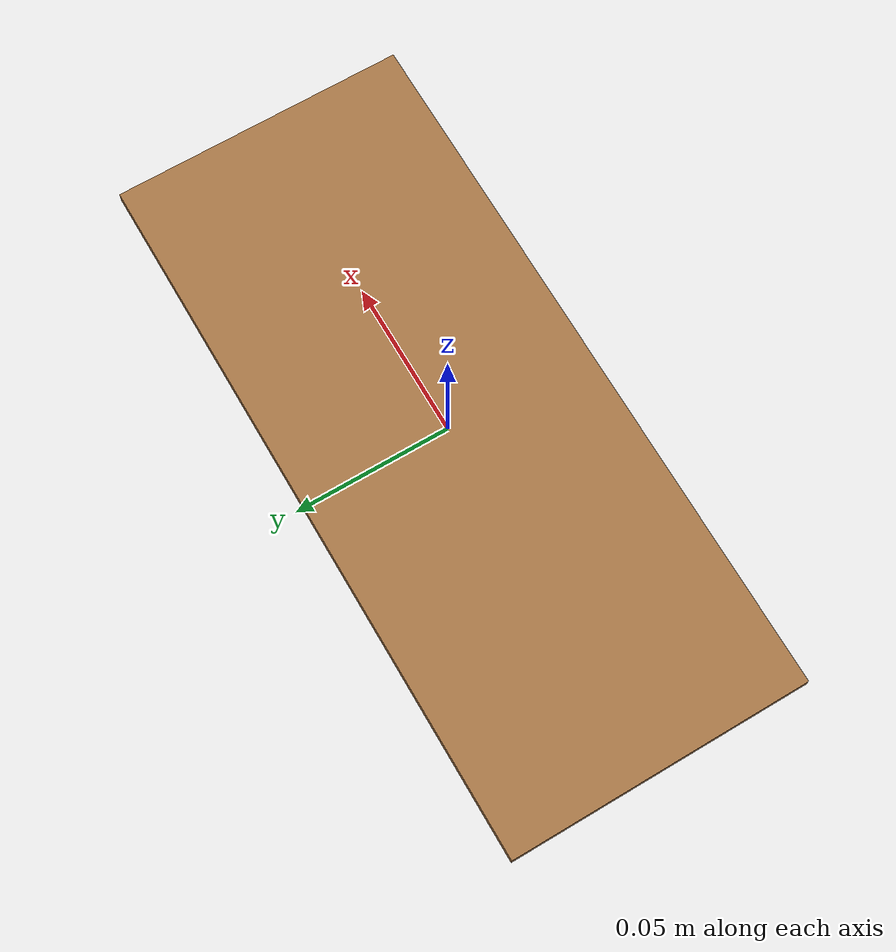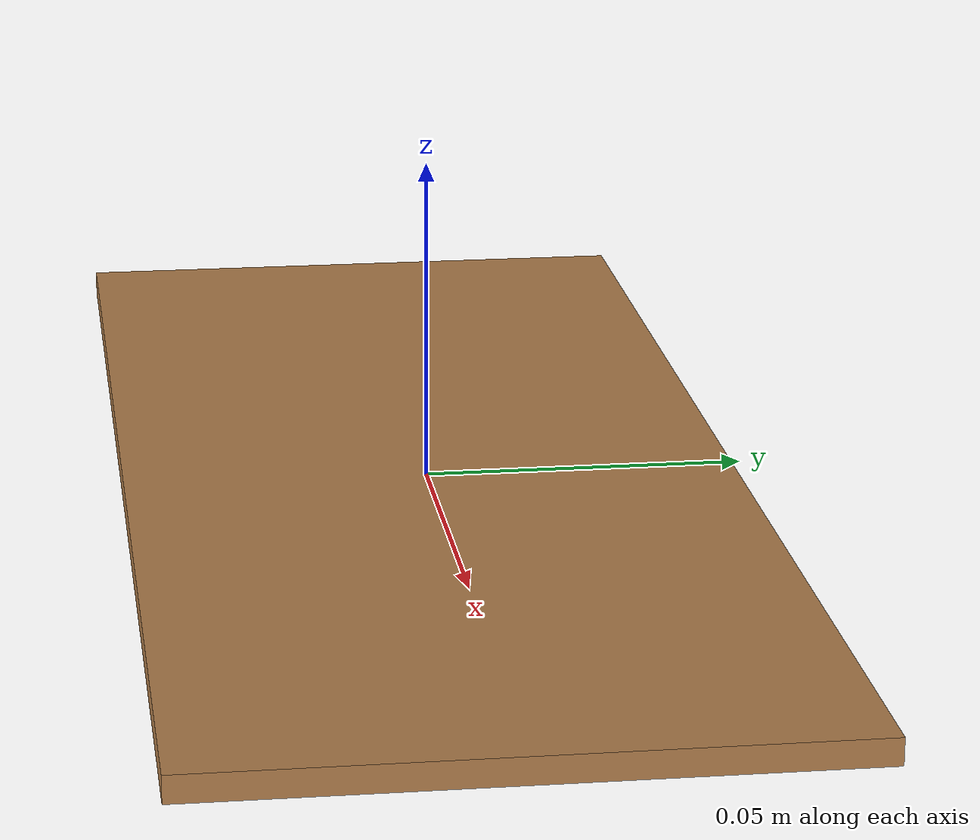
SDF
<?xml version='1.0'?>
<sdf version="1.4">
<model name="button">
    <static>true</static>
    <link name="link">
      <pose>0 0 0 0 0 0</pose>
      <collision name="collision">
        <geometry>
          <box>
            <size>0.228 0.095 0.004</size>
          </box>
        </geometry>
      </collision>
      <visual name="visual">
        <geometry>
          <box>
            <size>0.228 0.095 0.004</size>
          </box>
        </geometry>
        <material>
          <script>
            <uri>file://media/materials/scripts/gazebo.material</uri>
            <name>Gazebo/Wood</name>
          </script>
        </material>
      </visual>
    </link>
  </model>
</sdf>
